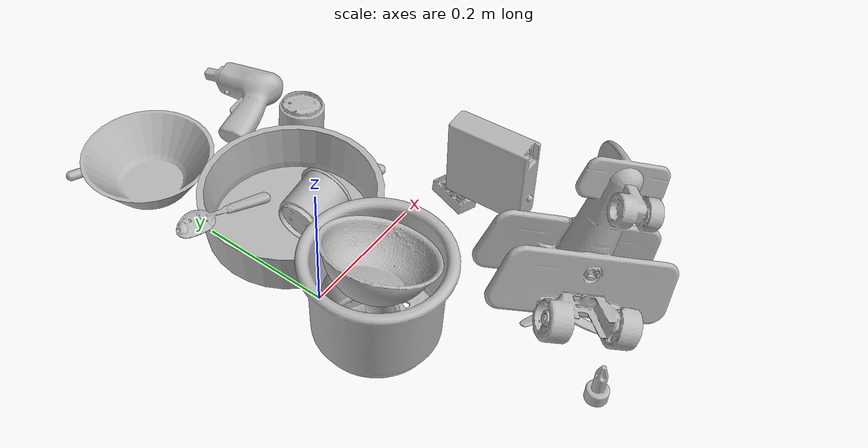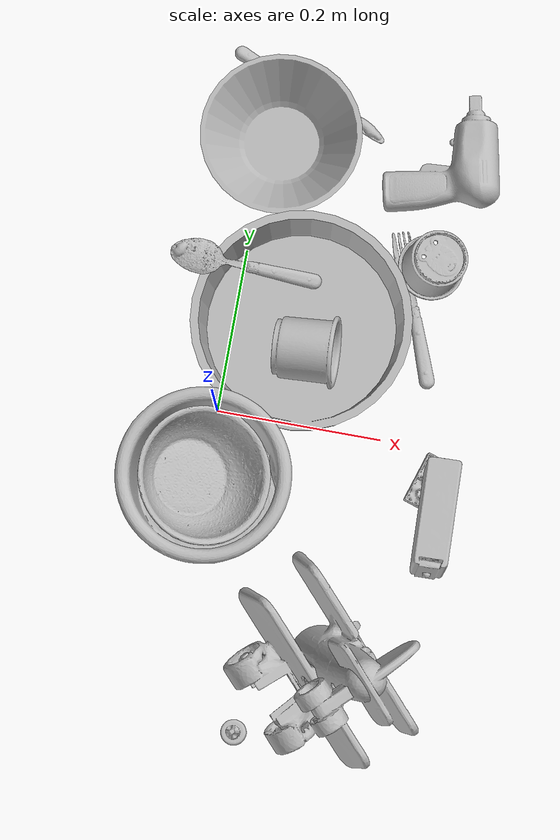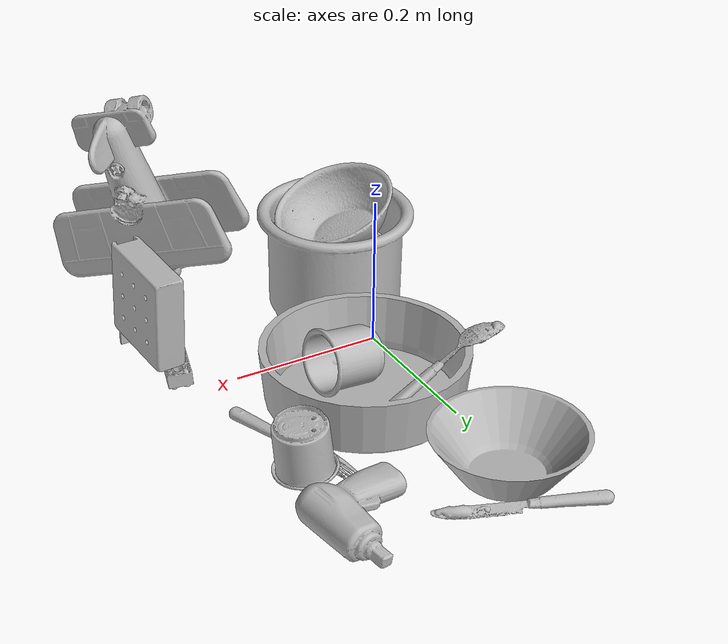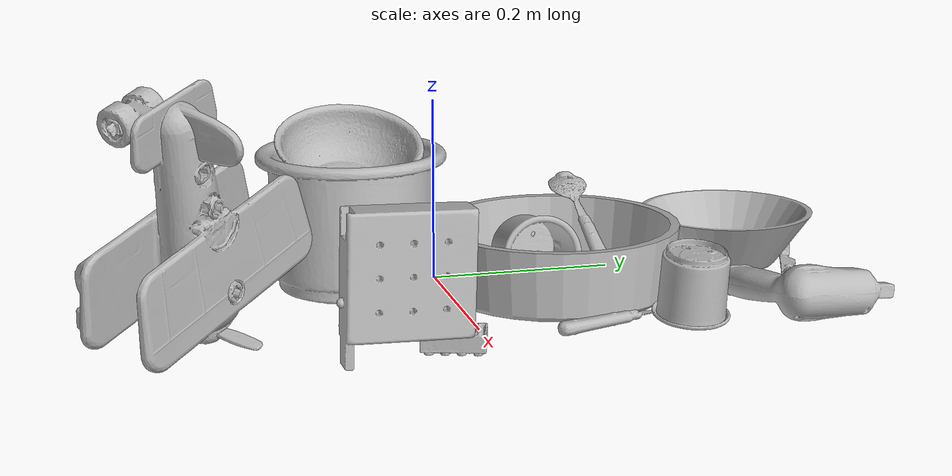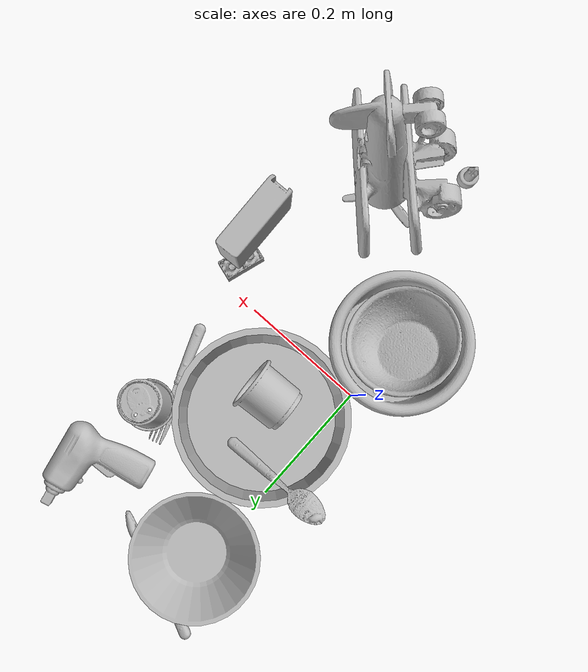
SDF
<sdf version="1.4">
  <world name="default">
    <light name="light1" type="point">
      <pose>0 0 1 0 0 0</pose>
      <diffuse>3 3 3 1</diffuse>
      <specular>3 3 3 1</specular>
    </light>
    <light name="light2" type="point">
      <pose>0 0.5 2 0 0 0</pose>
      <diffuse>1 1 1 1</diffuse>
      <specular>1 1 1 1</specular>
    </light>
    <light name="light3" type="point">
      <pose>0 0.5 2 0 0 0</pose>
      <diffuse>3 3 3 1</diffuse>
      <specular>3 3 3 1</specular>
    </light>
    <scene>
      <ambient>0.7 0.7 0.7</ambient>
    </scene>
    <model name="plate1">
      <link name="link_plate1">
        <collision name="default">
          <geometry>
            <mesh>
              <uri>model://pan_tefal/collision_meshes/collision.obj</uri>
              <scale>1.0 1.0 1.0</scale>
            </mesh>
          </geometry>
          <surface>
            <friction>
              <ode>
                <mu>0.5</mu>
                <mu2>0.5</mu2>
              </ode>
            </friction>
          <contact>
        <ode>
            <max_vel>0</max_vel>
            <min_depth>0.0001</min_depth>
            <kp>1e8</kp>
        </ode>
    </contact></surface>
        </collision>
        <visual name="default">
          <geometry>
            <mesh>
              <uri>model://pan_tefal/visual_meshes/visual.dae</uri>
              <scale>1.0 1.0 1.0</scale>
            </mesh>
          </geometry>
        </visual>
        <inertial>
          <mass>1.2414644956588745</mass>
          <pose>-0.0001800298341549933 3.278589065303095e-05 -0.00851493515074253 0.0008190165640447202 -0.0003301348973125405 -0.33185319573483557</pose>
          <inertia>
            <ixx>0.00856977</ixx>
            <iyy>0.008625018</iyy>
            <izz>0.015775295</izz>
            <ixy>0</ixy>
            <ixz>0</ixz>
            <iyz>0</iyz>
          </inertia>
        </inertial>
      </link>
      <pose>0.08180660754442215 0.11652307212352753 0.037983138114213943 -0.0003657844228560599 -0.00036248384435798634 1.8555663203536694</pose>
    </model>
    <model name="cup1">
      <link name="link_cup1">
        <collision name="default">
          <geometry>
            <mesh>
              <uri>model://j_cups/collision_meshes/collision.obj</uri>
              <scale>2.0 2.0 2.0</scale>
            </mesh>
          </geometry>
          <surface>
            <friction>
              <ode>
                <mu>0.5</mu>
                <mu2>0.5</mu2>
              </ode>
            </friction>
          <contact>
        <ode>
            <max_vel>0</max_vel>
            <min_depth>0.0001</min_depth>
            <kp>1e8</kp>
        </ode>
    </contact></surface>
        </collision>
        <visual name="default">
          <geometry>
            <mesh>
              <uri>model://j_cups/visual_meshes/visual.dae</uri>
              <scale>2.0 2.0 2.0</scale>
            </mesh>
          </geometry>
        </visual>
        <inertial>
          <mass>0.42814481258392334</mass>
          <pose>0.0012329709716141224 0.0010797895956784487 -0.002695801667869091 0.030303634199985552 0.037580068488308346 0.43868666904956827</pose>
          <inertia>
            <ixx>0.0025146077</ixx>
            <iyy>0.0025407567</iyy>
            <izz>0.0028988216</izz>
            <ixy>0</ixy>
            <ixz>0</ixz>
            <iyz>0</iyz>
          </inertia>
        </inertial>
      </link>
      <pose>0.0050779650919139385 -0.0924680158495903 0.075978122651577 1.5046844959648702e-06 -4.87656319596025e-06 0.3374553712892523</pose>
    </model>
    <model name="silverware1">
      <link name="link_silverware1">
        <collision name="default">
          <geometry>
            <mesh>
              <uri>model://fork/collision_meshes/collision.obj</uri>
              <scale>1.0 1.0 1.0</scale>
            </mesh>
          </geometry>
          <surface>
            <friction>
              <ode>
                <mu>0.5</mu>
                <mu2>0.5</mu2>
              </ode>
            </friction>
          <contact>
        <ode>
            <max_vel>0</max_vel>
            <min_depth>0.0001</min_depth>
            <kp>1e8</kp>
        </ode>
    </contact></surface>
        </collision>
        <visual name="default">
          <geometry>
            <mesh>
              <uri>model://fork/visual_meshes/visual.dae</uri>
              <scale>1.0 1.0 1.0</scale>
            </mesh>
          </geometry>
        </visual>
        <inertial>
          <mass>0.013809523545205593</mass>
          <pose>-0.029570044949650764 0.0004658822435885668 0.00032188615296036005 -0.013551743215227608 -0.010977837587661193 0.014453899243146438</pose>
          <inertia>
            <ixx>4.84102e-07</ixx>
            <iyy>3.6052697e-05</iyy>
            <izz>3.6269223e-05</izz>
            <ixy>0</ixy>
            <ixz>0</ixz>
            <iyz>0</iyz>
          </inertia>
        </inertial>
      </link>
      <pose>0.21205823123455048 0.1633487045764923 0.007499011233448982 -3.0850130773732256 0.0014688006544113545 1.9188130568360848</pose>
    </model>
    <model name="silverware2">
      <link name="link_silverware2">
        <collision name="default">
          <geometry>
            <mesh>
              <uri>model://knife/collision_meshes/collision.obj</uri>
              <scale>1.0 1.0 1.0</scale>
            </mesh>
          </geometry>
          <surface>
            <friction>
              <ode>
                <mu>0.5</mu>
                <mu2>0.5</mu2>
              </ode>
            </friction>
          <contact>
        <ode>
            <max_vel>0</max_vel>
            <min_depth>0.0001</min_depth>
            <kp>1e8</kp>
        </ode>
    </contact></surface>
        </collision>
        <visual name="default">
          <geometry>
            <mesh>
              <uri>model://knife/visual_meshes/visual.dae</uri>
              <scale>1.0 1.0 1.0</scale>
            </mesh>
          </geometry>
        </visual>
        <inertial>
          <mass>0.021972408518195152</mass>
          <pose>-0.023785250261425972 0.0015275123296305537 5.0620161346159875e-05 0.07305788583029697 0.01724841890740089 -0.007409824444555058</pose>
          <inertia>
            <ixx>6.2366604e-07</ixx>
            <iyy>8.441444e-05</iyy>
            <izz>8.46153e-05</izz>
            <ixy>0</ixy>
            <ixz>0</ixz>
            <iyz>0</iyz>
          </inertia>
        </inertial>
      </link>
      <pose>0.04133128374814987 0.4047242999076843 0.005810752511024475 2.8893611246217805 0.02591439371731141 -0.37871836516681656</pose>
    </model>
    <model name="silverware3">
      <link name="link_silverware3">
        <collision name="default">
          <geometry>
            <mesh>
              <uri>model://spoon/collision_meshes/collision.obj</uri>
              <scale>1.0 1.0 1.0</scale>
            </mesh>
          </geometry>
          <surface>
            <friction>
              <ode>
                <mu>0.5</mu>
                <mu2>0.5</mu2>
              </ode>
            </friction>
          <contact>
        <ode>
            <max_vel>0</max_vel>
            <min_depth>0.0001</min_depth>
            <kp>1e8</kp>
        </ode>
    </contact></surface>
        </collision>
        <visual name="default">
          <geometry>
            <mesh>
              <uri>model://spoon/visual_meshes/visual.dae</uri>
              <scale>1.0 1.0 1.0</scale>
            </mesh>
          </geometry>
        </visual>
        <inertial>
          <mass>0.026694269850850105</mass>
          <pose>-0.005526325199753046 -0.0016034168656915426 -0.0007271653739735484 0.035216710718480135 -0.03906584501417282 0.00615060951780049</pose>
          <inertia>
            <ixx>1.484779e-06</ixx>
            <iyy>0.000101570804</iyy>
            <izz>0.000102303035</izz>
            <ixy>0</ixy>
            <ixz>0</ixz>
            <iyz>0</iyz>
          </inertia>
        </inertial>
      </link>
      <pose>0.006828601006418467 0.17361626029014587 0.05572831630706787 2.971417860624572 -0.48947968304709244 -3.095932078953928</pose>
    </model>
    <model name="cup3">
      <link name="link_cup3">
        <collision name="default">
          <geometry>
            <mesh>
              <uri>model://f_cups/collision_meshes/collision.obj</uri>
              <scale>1.0 1.0 1.0</scale>
            </mesh>
          </geometry>
          <surface>
            <friction>
              <ode>
                <mu>0.5</mu>
                <mu2>0.5</mu2>
              </ode>
            </friction>
          <contact>
        <ode>
            <max_vel>0</max_vel>
            <min_depth>0.0001</min_depth>
            <kp>1e8</kp>
        </ode>
    </contact></surface>
        </collision>
        <visual name="default">
          <geometry>
            <mesh>
              <uri>model://f_cups/visual_meshes/visual.dae</uri>
              <scale>1.0 1.0 1.0</scale>
            </mesh>
          </geometry>
        </visual>
        <inertial>
          <mass>0.09255705773830414</mass>
          <pose>-0.0031714672222733498 -0.0006240062648430467 -0.0036555363330990076 0.7862294428046025 -0.26079256257201844 -0.18237393521905715</pose>
          <inertia>
            <ixx>8.700612e-05</ixx>
            <iyy>9.127041e-05</iyy>
            <izz>9.501506e-05</izz>
            <ixy>0</ixy>
            <ixz>0</ixz>
            <iyz>0</iyz>
          </inertia>
        </inertial>
      </link>
      <pose>0.22747237980365753 0.21904940903186798 0.04099510610103607 -3.0112415992666577 0.00570362353317244 1.7027532673365438</pose>
    </model>
    <model name="cup4">
      <link name="link_cup4">
        <collision name="default">
          <geometry>
            <mesh>
              <uri>model://g_cups/collision_meshes/collision.obj</uri>
              <scale>1.0 1.0 1.0</scale>
            </mesh>
          </geometry>
          <surface>
            <friction>
              <ode>
                <mu>0.5</mu>
                <mu2>0.5</mu2>
              </ode>
            </friction>
          <contact>
        <ode>
            <max_vel>0</max_vel>
            <min_depth>0.0001</min_depth>
            <kp>1e8</kp>
        </ode>
    </contact></surface>
        </collision>
        <visual name="default">
          <geometry>
            <mesh>
              <uri>model://g_cups/visual_meshes/visual.dae</uri>
              <scale>1.0 1.0 1.0</scale>
            </mesh>
          </geometry>
        </visual>
        <inertial>
          <mass>0.09045539051294327</mass>
          <pose>-0.0007946272380650043 -4.206356970826164e-05 -0.0021329366136342287 -0.21382427470227655 -0.31410603394020525 0.31120189460551634</pose>
          <inertia>
            <ixx>0.000105581705</ixx>
            <iyy>0.000105222556</iyy>
            <izz>0.000109364446</izz>
            <ixy>0</ixy>
            <ixz>0</ixz>
            <iyz>0</iyz>
          </inertia>
        </inertial>
      </link>
      <pose>0.0927283987402916 0.0862574502825737 0.04730026796460152 -0.9064176665906478 -1.3944681351894144 -2.1735106795584116</pose>
    </model>
    <model name="cup5">
      <link name="link_cup5">
        <collision name="default">
          <geometry>
            <mesh>
              <uri>model://i_cups/collision_meshes/collision.obj</uri>
              <scale>1.0 1.0 1.0</scale>
            </mesh>
          </geometry>
          <surface>
            <friction>
              <ode>
                <mu>0.5</mu>
                <mu2>0.5</mu2>
              </ode>
            </friction>
          <contact>
        <ode>
            <max_vel>0</max_vel>
            <min_depth>0.0001</min_depth>
            <kp>1e8</kp>
        </ode>
    </contact></surface>
        </collision>
        <visual name="default">
          <geometry>
            <mesh>
              <uri>model://i_cups/visual_meshes/visual.dae</uri>
              <scale>1.0 1.0 1.0</scale>
            </mesh>
          </geometry>
        </visual>
        <inertial>
          <mass>0.0815454050898552</mass>
          <pose>0.0001123997790273279 0.00016797320859041065 -0.0008579009445384145 -0.02898318353055437 -0.03987301779891007 -0.3459082462056558</pose>
          <inertia>
            <ixx>0.0001129008</ixx>
            <iyy>0.000113895556</iyy>
            <izz>0.00012618494</izz>
            <ixy>0</ixy>
            <ixz>0</ixz>
            <iyz>0</iyz>
          </inertia>
        </inertial>
      </link>
      <pose>-0.013399368152022362 -0.07435370236635208 0.06226065009832382 1.172162510399111 -1.233704479966822 -0.3070257253740038</pose>
    </model>
    <model name="bowl1">
      <link name="link_bowl1">
        <collision name="default">
          <geometry>
            <mesh>
              <uri>model://bowl/collision_meshes/collision.obj</uri>
              <scale>1.0 1.0 1.0</scale>
            </mesh>
          </geometry>
          <surface>
            <friction>
              <ode>
                <mu>0.5</mu>
                <mu2>0.5</mu2>
              </ode>
            </friction>
          <contact>
        <ode>
            <max_vel>0</max_vel>
            <min_depth>0.0001</min_depth>
            <kp>1e8</kp>
        </ode>
    </contact></surface>
        </collision>
        <visual name="default">
          <geometry>
            <mesh>
              <uri>model://bowl/visual_meshes/visual.dae</uri>
              <scale>1.0 1.0 1.0</scale>
            </mesh>
          </geometry>
        </visual>
        <inertial>
          <mass>0.1349102407693863</mass>
          <pose>0.00020445192058105022 -0.0010302069131284952 -0.0008042648551054299 -0.01576408127006171 0.01454679335072616 0.7140405111038781</pose>
          <inertia>
            <ixx>0.00030989948</ixx>
            <iyy>0.00030297515</iyy>
            <izz>0.0005213576</izz>
            <ixy>0</ixy>
            <ixz>0</ixz>
            <iyz>0</iyz>
          </inertia>
        </inertial>
      </link>
      <pose>-0.0014116582460701466 -0.09451315551996231 0.13506807386875153 0.3441820040686717 -0.15098074869042405 2.0067682177638377</pose>
    </model>
    <model name="bowl2">
      <link name="link_bowl2">
        <collision name="default">
          <geometry>
            <mesh>
              <uri>model://bowl_a/collision_meshes/collision.obj</uri>
              <scale>1.0 1.0 1.0</scale>
            </mesh>
          </geometry>
          <surface>
            <friction>
              <ode>
                <mu>0.5</mu>
                <mu2>0.5</mu2>
              </ode>
            </friction>
          <contact>
        <ode>
            <max_vel>0</max_vel>
            <min_depth>0.0001</min_depth>
            <kp>1e8</kp>
        </ode>
    </contact></surface>
        </collision>
        <visual name="default">
          <geometry>
            <mesh>
              <uri>model://bowl_a/visual_meshes/visual.dae</uri>
              <scale>1.0 1.0 1.0</scale>
            </mesh>
          </geometry>
        </visual>
        <inertial>
          <mass>0.4816342294216156</mass>
          <pose>0.000278677063761279 4.73155923828017e-05 -0.0013765296898782253 -0.0009805427744981278 -0.0010938171301827632 -0.19123023792191385</pose>
          <inertia>
            <ixx>0.0013712347</ixx>
            <iyy>0.0013796532</iyy>
            <izz>0.0024387941</izz>
            <ixy>0</ixy>
            <ixz>0</ixz>
            <iyz>0</iyz>
          </inertia>
        </inertial>
      </link>
      <pose>0.01737981103360653 0.33793869614601135 0.030383341014385223 -9.738477635919952e-06 6.2375239499969675e-06 -0.30996498534055633</pose>
    </model>
    <model name="toy1">
      <link name="link_toy1">
        <collision name="default">
          <geometry>
            <mesh>
              <uri>model://a_toy_airplane/collision_meshes/collision.obj</uri>
              <scale>1.0 1.0 1.0</scale>
            </mesh>
          </geometry>
          <surface>
            <friction>
              <ode>
                <mu>0.5</mu>
                <mu2>0.5</mu2>
              </ode>
            </friction>
          <contact>
        <ode>
            <max_vel>0</max_vel>
            <min_depth>0.0001</min_depth>
            <kp>1e8</kp>
        </ode>
    </contact></surface>
        </collision>
        <visual name="default">
          <geometry>
            <mesh>
              <uri>model://a_toy_airplane/visual_meshes/visual.dae</uri>
              <scale>1.0 1.0 1.0</scale>
            </mesh>
          </geometry>
        </visual>
        <inertial>
          <mass>1.6936675310134888</mass>
          <pose>0.025165095925331116 -0.0037073225248605013 -0.0011962444987148046 -0.01201699252327453 -0.146634996228158 0.004149091382990828</pose>
          <inertia>
            <ixx>0.0061505185</ixx>
            <iyy>0.008962553</iyy>
            <izz>0.010494047</izz>
            <ixy>0</ixy>
            <ixz>0</ixz>
            <iyz>0</iyz>
          </inertia>
        </inertial>
      </link>
      <pose>0.19583897292613983 -0.28234925866127014 0.13218927383422852 2.4033718695434905 1.1591837055523666 -3.0899481975569514</pose>
    </model>
    <model name="toy2">
      <link name="link_toy2">
        <collision name="default">
          <geometry>
            <mesh>
              <uri>model://c_lego_duplo/collision_meshes/collision.obj</uri>
              <scale>1.0 1.0 1.0</scale>
            </mesh>
          </geometry>
          <surface>
            <friction>
              <ode>
                <mu>0.5</mu>
                <mu2>0.5</mu2>
              </ode>
            </friction>
          <contact>
        <ode>
            <max_vel>0</max_vel>
            <min_depth>0.0001</min_depth>
            <kp>1e8</kp>
        </ode>
    </contact></surface>
        </collision>
        <visual name="default">
          <geometry>
            <mesh>
              <uri>model://c_lego_duplo/visual_meshes/visual.dae</uri>
              <scale>1.0 1.0 1.0</scale>
            </mesh>
          </geometry>
        </visual>
        <inertial>
          <mass>0.01636073924601078</mass>
          <pose>0.000316459103487432 0.0001946457487065345 0.001045315177179873 -0.01152079658800189 0.005900071110555828 0.03110036538654021</pose>
          <inertia>
            <ixx>6.295917e-06</ixx>
            <iyy>2.0111436e-06</iyy>
            <izz>7.357428e-06</izz>
            <ixy>0</ixy>
            <ixz>0</ixz>
            <iyz>0</iyz>
          </inertia>
        </inertial>
      </link>
      <pose>0.2645938992500305 -0.04185386374592781 0.012925615534186363 -3.1408597582726587 -0.09297231229480267 2.8599229298877247</pose>
    </model>
    <model name="toy3">
      <link name="link_toy3">
        <collision name="default">
          <geometry>
            <mesh>
              <uri>model://nine_hole_peg_test/collision_meshes/collision.obj</uri>
              <scale>1.0 1.0 1.0</scale>
            </mesh>
          </geometry>
          <surface>
            <friction>
              <ode>
                <mu>0.5</mu>
                <mu2>0.5</mu2>
              </ode>
            </friction>
          <contact>
        <ode>
            <max_vel>0</max_vel>
            <min_depth>0.0001</min_depth>
            <kp>1e8</kp>
        </ode>
    </contact></surface>
        </collision>
        <visual name="default">
          <geometry>
            <mesh>
              <uri>model://nine_hole_peg_test/visual_meshes/visual.dae</uri>
              <scale>1.0 1.0 1.0</scale>
            </mesh>
          </geometry>
        </visual>
        <inertial>
          <mass>0.9464474320411682</mass>
          <pose>-0.004617386497557163 -0.009647613391280174 2.646068787726108e-05 -0.0014666793204268175 0.0007194166079670136 -0.6342420609245715</pose>
          <inertia>
            <ixx>0.0014799263</ixx>
            <iyy>0.0013817915</iyy>
            <izz>0.002593267</izz>
            <ixy>0</ixy>
            <ixz>0</ixz>
            <iyz>0</iyz>
          </inertia>
        </inertial>
      </link>
      <pose>0.2790791690349579 -0.09511985629796982 0.07775691896677017 -1.5674684399326662 -0.02607810757122516 -1.5424848204127741</pose>
    </model>
    <model name="toy4">
      <link name="link_toy4">
        <collision name="default">
          <geometry>
            <mesh>
              <uri>model://d_toy_airplane/collision_meshes/collision.obj</uri>
              <scale>1.0 1.0 1.0</scale>
            </mesh>
          </geometry>
          <surface>
            <friction>
              <ode>
                <mu>0.5</mu>
                <mu2>0.5</mu2>
              </ode>
            </friction>
          <contact>
        <ode>
            <max_vel>0</max_vel>
            <min_depth>0.0001</min_depth>
            <kp>1e8</kp>
        </ode>
    </contact></surface>
        </collision>
        <visual name="default">
          <geometry>
            <mesh>
              <uri>model://d_toy_airplane/visual_meshes/visual.dae</uri>
              <scale>1.0 1.0 1.0</scale>
            </mesh>
          </geometry>
        </visual>
        <inertial>
          <mass>0.021776849403977394</mass>
          <pose>9.410295024281368e-05 -5.809321373817511e-05 -0.011728097684681416 0.0002661671660100631 0.004679022103859929 0.519291232465637</pose>
          <inertia>
            <ixx>6.5282748e-06</ixx>
            <iyy>6.5331997e-06</iyy>
            <izz>1.9709291e-06</izz>
            <ixy>0</ixy>
            <ixz>0</ixz>
            <iyz>0</iyz>
          </inertia>
        </inertial>
      </link>
      <pose>0.08881966769695282 -0.3764195740222931 0.03333844617009163 0.00013376888137217165 -7.21855665184938e-05 2.323205909387163</pose>
    </model>
    <model name="toy5">
      <link name="link_toy5">
        <collision name="default">
          <geometry>
            <mesh>
              <uri>model://b_toy_airplane/collision_meshes/collision.obj</uri>
              <scale>1.0 1.0 1.0</scale>
            </mesh>
          </geometry>
          <surface>
            <friction>
              <ode>
                <mu>0.5</mu>
                <mu2>0.5</mu2>
              </ode>
            </friction>
          <contact>
        <ode>
            <max_vel>0</max_vel>
            <min_depth>0.0001</min_depth>
            <kp>1e8</kp>
        </ode>
    </contact></surface>
        </collision>
        <visual name="default">
          <geometry>
            <mesh>
              <uri>model://b_toy_airplane/visual_meshes/visual.dae</uri>
              <scale>1.0 1.0 1.0</scale>
            </mesh>
          </geometry>
        </visual>
        <inertial>
          <mass>0.25237053632736206</mass>
          <pose>0.00508136348798871 0.004015584476292133 0.00954306498169899 -0.04001808288480986 -0.0402218063825515 -0.5601503558886168</pose>
          <inertia>
            <ixx>0.00046853055</ixx>
            <iyy>0.00018727628</iyy>
            <izz>0.0005828988</izz>
            <ixy>0</ixy>
            <ixz>0</ixz>
            <iyz>0</iyz>
          </inertia>
        </inertial>
      </link>
      <pose>0.23040953278541565 0.3341018557548523 0.035689108073711395 3.06957090913653 0.07405947847324802 1.7655129643981335</pose>
    </model>
  <physics type="ode">
      <max_contacts>50</max_contacts>
      <ode>
        <solver>
          <type>quick</type>
          <iters>75</iters>
        </solver>
        <constraints>
          <contact_max_correcting_vel>0</contact_max_correcting_vel>
          <contact_surface_layer>0</contact_surface_layer>
        </constraints>
      </ode>
    </physics></world>
</sdf>
